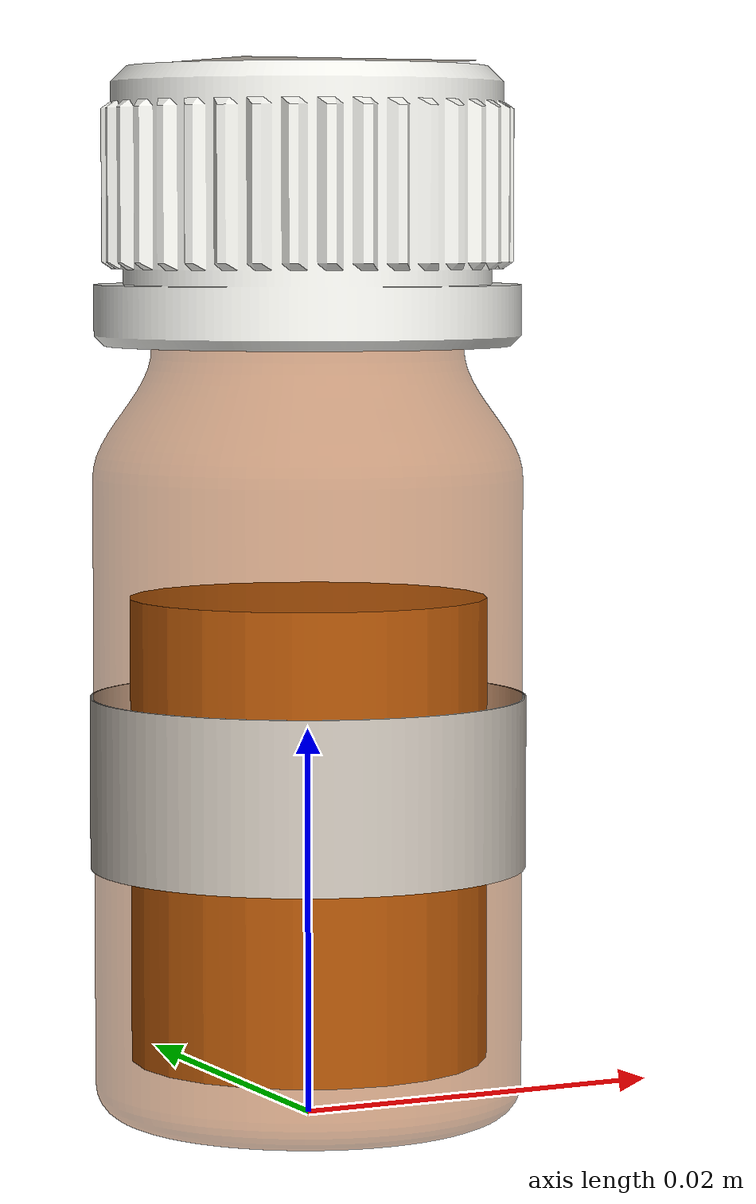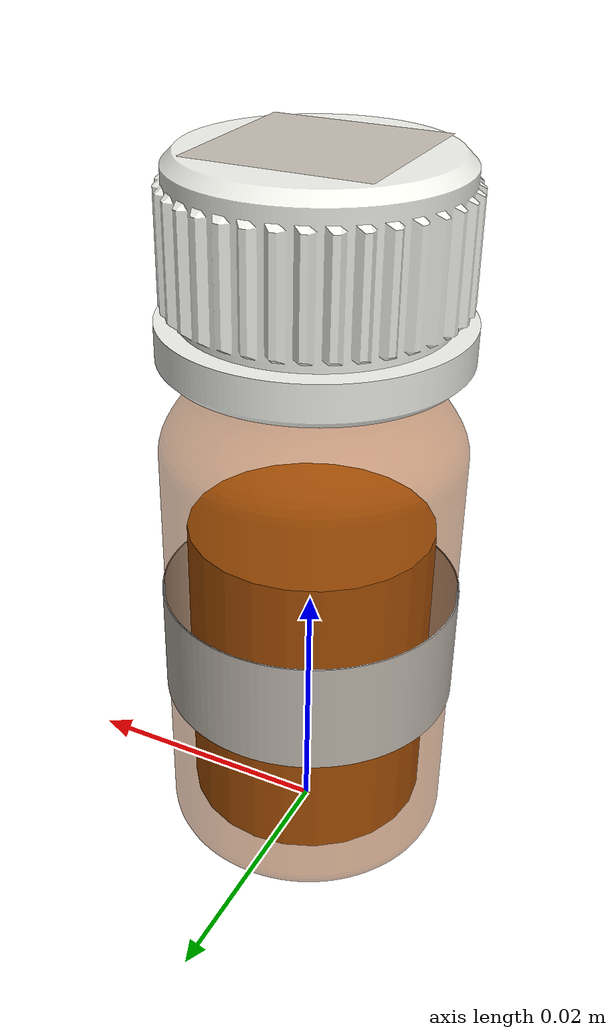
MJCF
<!-- Generated by tools/build_labelled_bottles.py. Anethole (liquid),
     10 ml, marker 40, barcode 2004820385598.
     Origin bottom-centre, +Z up, the label's front facing -Y. -->
<mujoco model="SMP-0041_open">
  <!-- Generated by scripts/generate_open_vessels.py; do not edit by hand. -->
  <asset>
    <mesh name="flask_10ml_glass" file="../labelled_bottles/meshes/flask_10ml_glass.obj" inertia="exact"/>
    <mesh name="flask_10ml_cap" file="../labelled_bottles/meshes/flask_10ml_cap.obj" inertia="exact"/>
    <mesh name="flask_10ml_label" file="../labelled_bottles/meshes/flask_10ml_label.obj" inertia="shell"/>
    <mesh name="flask_10ml_label_back" file="../labelled_bottles/meshes/flask_10ml_label_back.obj" inertia="shell"/>
    <mesh name="flask_10ml_cap_label" file="../labelled_bottles/meshes/flask_10ml_cap_label.obj" inertia="shell"/>
    <texture name="label" type="2d" file="../labelled_bottles/textures/SMP-0041.png"/>
    <material name="label" texture="label" specular="0.05" shininess="0.1"/>
    <texture name="cap_label" type="2d" file="../labelled_bottles/textures/SMP-0041_cap.png"/>
    <material name="cap_label" texture="cap_label" specular="0.05" shininess="0.1"/>
  </asset>
  <worldbody>
    <body name="SMP-0041">
      <inertial pos="-0.00001 -0.00000 0.02648" mass="0.01566"
                diaginertia="4.821e-06 4.821e-06 1.335e-06"/>
      <geom name="glass" type="mesh" mesh="flask_10ml_glass" rgba="0.620 0.280 0.050 0.500" contype="0" conaffinity="0" mass="0"/>
      <geom name="cap" type="mesh" mesh="flask_10ml_cap" rgba="0.930 0.930 0.910 1.000" density="900"/>
      <geom name="label" type="mesh" mesh="flask_10ml_label" material="label" contype="0" conaffinity="0" mass="0"/>
      <geom name="label_back" type="mesh" mesh="flask_10ml_label_back" rgba="0.950 0.950 0.930 1" contype="0" conaffinity="0" mass="0"/>
      <geom name="cap_label" type="mesh" mesh="flask_10ml_cap_label" material="cap_label" contype="0" conaffinity="0" mass="0"/>
      <geom name="body_00" type="box" pos="0.01020 0.00000 0.02090"
            size="0.00100 0.00334 0.01790" euler="0 0 0.000"
            rgba="0 0 0 0" mass="0" group="3"/>
      <geom name="body_01" type="box" pos="0.00884 0.00510 0.02090"
            size="0.00100 0.00334 0.01790" euler="0 0 30.000"
            rgba="0 0 0 0" mass="0" group="3"/>
      <geom name="body_02" type="box" pos="0.00510 0.00884 0.02090"
            size="0.00100 0.00334 0.01790" euler="0 0 60.000"
            rgba="0 0 0 0" mass="0" group="3"/>
      <geom name="body_03" type="box" pos="0.00000 0.01020 0.02090"
            size="0.00100 0.00334 0.01790" euler="0 0 90.000"
            rgba="0 0 0 0" mass="0" group="3"/>
      <geom name="body_04" type="box" pos="-0.00510 0.00884 0.02090"
            size="0.00100 0.00334 0.01790" euler="0 0 120.000"
            rgba="0 0 0 0" mass="0" group="3"/>
      <geom name="body_05" type="box" pos="-0.00884 0.00510 0.02090"
            size="0.00100 0.00334 0.01790" euler="0 0 150.000"
            rgba="0 0 0 0" mass="0" group="3"/>
      <geom name="body_06" type="box" pos="-0.01020 0.00000 0.02090"
            size="0.00100 0.00334 0.01790" euler="0 0 180.000"
            rgba="0 0 0 0" mass="0" group="3"/>
      <geom name="body_07" type="box" pos="-0.00884 -0.00510 0.02090"
            size="0.00100 0.00334 0.01790" euler="0 0 210.000"
            rgba="0 0 0 0" mass="0" group="3"/>
      <geom name="body_08" type="box" pos="-0.00510 -0.00884 0.02090"
            size="0.00100 0.00334 0.01790" euler="0 0 240.000"
            rgba="0 0 0 0" mass="0" group="3"/>
      <geom name="body_09" type="box" pos="-0.00000 -0.01020 0.02090"
            size="0.00100 0.00334 0.01790" euler="0 0 270.000"
            rgba="0 0 0 0" mass="0" group="3"/>
      <geom name="body_10" type="box" pos="0.00510 -0.00884 0.02090"
            size="0.00100 0.00334 0.01790" euler="0 0 300.000"
            rgba="0 0 0 0" mass="0" group="3"/>
      <geom name="body_11" type="box" pos="0.00884 -0.00510 0.02090"
            size="0.00100 0.00334 0.01790" euler="0 0 330.000"
            rgba="0 0 0 0" mass="0" group="3"/>
      <geom name="shoulder_00" type="box" pos="0.00895 0.00000 0.04143"
            size="0.00100 0.00293 0.00264" euler="0 0 0.000"
            rgba="0 0 0 0" mass="0" group="3"/>
      <geom name="shoulder_01" type="box" pos="0.00775 0.00448 0.04143"
            size="0.00100 0.00293 0.00264" euler="0 0 30.000"
            rgba="0 0 0 0" mass="0" group="3"/>
      <geom name="shoulder_02" type="box" pos="0.00448 0.00775 0.04143"
            size="0.00100 0.00293 0.00264" euler="0 0 60.000"
            rgba="0 0 0 0" mass="0" group="3"/>
      <geom name="shoulder_03" type="box" pos="0.00000 0.00895 0.04143"
            size="0.00100 0.00293 0.00264" euler="0 0 90.000"
            rgba="0 0 0 0" mass="0" group="3"/>
      <geom name="shoulder_04" type="box" pos="-0.00448 0.00775 0.04143"
            size="0.00100 0.00293 0.00264" euler="0 0 120.000"
            rgba="0 0 0 0" mass="0" group="3"/>
      <geom name="shoulder_05" type="box" pos="-0.00775 0.00448 0.04143"
            size="0.00100 0.00293 0.00264" euler="0 0 150.000"
            rgba="0 0 0 0" mass="0" group="3"/>
      <geom name="shoulder_06" type="box" pos="-0.00895 0.00000 0.04143"
            size="0.00100 0.00293 0.00264" euler="0 0 180.000"
            rgba="0 0 0 0" mass="0" group="3"/>
      <geom name="shoulder_07" type="box" pos="-0.00775 -0.00448 0.04143"
            size="0.00100 0.00293 0.00264" euler="0 0 210.000"
            rgba="0 0 0 0" mass="0" group="3"/>
      <geom name="shoulder_08" type="box" pos="-0.00448 -0.00775 0.04143"
            size="0.00100 0.00293 0.00264" euler="0 0 240.000"
            rgba="0 0 0 0" mass="0" group="3"/>
      <geom name="shoulder_09" type="box" pos="-0.00000 -0.00895 0.04143"
            size="0.00100 0.00293 0.00264" euler="0 0 270.000"
            rgba="0 0 0 0" mass="0" group="3"/>
      <geom name="shoulder_10" type="box" pos="0.00448 -0.00775 0.04143"
            size="0.00100 0.00293 0.00264" euler="0 0 300.000"
            rgba="0 0 0 0" mass="0" group="3"/>
      <geom name="shoulder_11" type="box" pos="0.00775 -0.00448 0.04143"
            size="0.00100 0.00293 0.00264" euler="0 0 330.000"
            rgba="0 0 0 0" mass="0" group="3"/>
      <geom name="neck_00" type="box" pos="0.00770 0.00000 0.04898"
            size="0.00100 0.00252 0.00490" euler="0 0 0.000"
            rgba="0 0 0 0" mass="0" group="3"/>
      <geom name="neck_01" type="box" pos="0.00667 0.00385 0.04898"
            size="0.00100 0.00252 0.00490" euler="0 0 30.000"
            rgba="0 0 0 0" mass="0" group="3"/>
      <geom name="neck_02" type="box" pos="0.00385 0.00667 0.04898"
            size="0.00100 0.00252 0.00490" euler="0 0 60.000"
            rgba="0 0 0 0" mass="0" group="3"/>
      <geom name="neck_03" type="box" pos="0.00000 0.00770 0.04898"
            size="0.00100 0.00252 0.00490" euler="0 0 90.000"
            rgba="0 0 0 0" mass="0" group="3"/>
      <geom name="neck_04" type="box" pos="-0.00385 0.00667 0.04898"
            size="0.00100 0.00252 0.00490" euler="0 0 120.000"
            rgba="0 0 0 0" mass="0" group="3"/>
      <geom name="neck_05" type="box" pos="-0.00667 0.00385 0.04898"
            size="0.00100 0.00252 0.00490" euler="0 0 150.000"
            rgba="0 0 0 0" mass="0" group="3"/>
      <geom name="neck_06" type="box" pos="-0.00770 0.00000 0.04898"
            size="0.00100 0.00252 0.00490" euler="0 0 180.000"
            rgba="0 0 0 0" mass="0" group="3"/>
      <geom name="neck_07" type="box" pos="-0.00667 -0.00385 0.04898"
            size="0.00100 0.00252 0.00490" euler="0 0 210.000"
            rgba="0 0 0 0" mass="0" group="3"/>
      <geom name="neck_08" type="box" pos="-0.00385 -0.00667 0.04898"
            size="0.00100 0.00252 0.00490" euler="0 0 240.000"
            rgba="0 0 0 0" mass="0" group="3"/>
      <geom name="neck_09" type="box" pos="-0.00000 -0.00770 0.04898"
            size="0.00100 0.00252 0.00490" euler="0 0 270.000"
            rgba="0 0 0 0" mass="0" group="3"/>
      <geom name="neck_10" type="box" pos="0.00385 -0.00667 0.04898"
            size="0.00100 0.00252 0.00490" euler="0 0 300.000"
            rgba="0 0 0 0" mass="0" group="3"/>
      <geom name="neck_11" type="box" pos="0.00667 -0.00385 0.04898"
            size="0.00100 0.00252 0.00490" euler="0 0 330.000"
            rgba="0 0 0 0" mass="0" group="3"/>
      <geom name="base" type="cylinder" pos="0 0 0.00150"
            size="0.01120 0.00150"
            rgba="0 0 0 0" mass="0" group="3"/>
      <geom name="liquid" type="cylinder" pos="0 0 0.01491"
            size="0.00920 0.01191" rgba="0.72 0.38 0.04 0.95"
            contype="0" conaffinity="0" mass="0"/>
      <site name="mouth" pos="0 0 0.05388" size="0.00598 0.001" type="cylinder"
            rgba="0.2 0.7 0.9 0.25" group="4"/>
    </body>
  </worldbody>
</mujoco>
